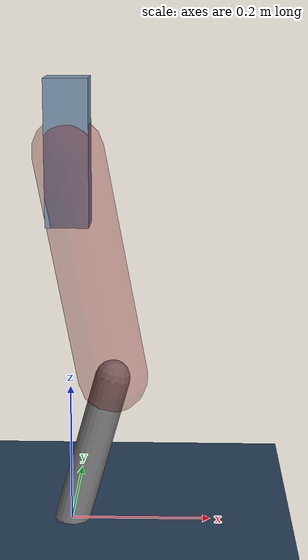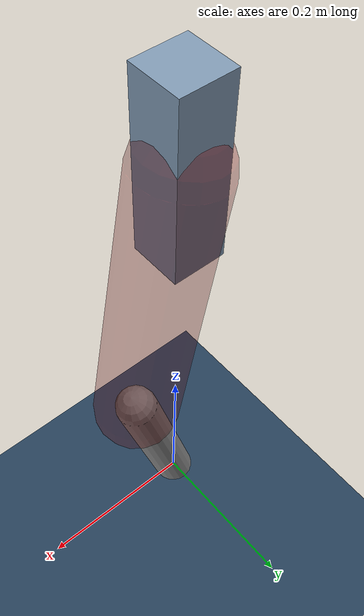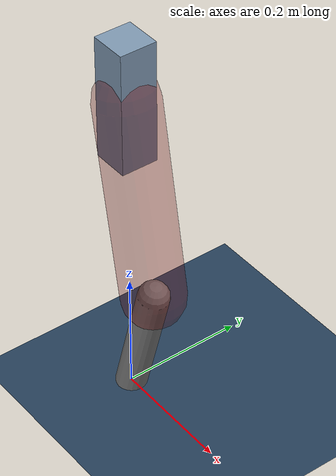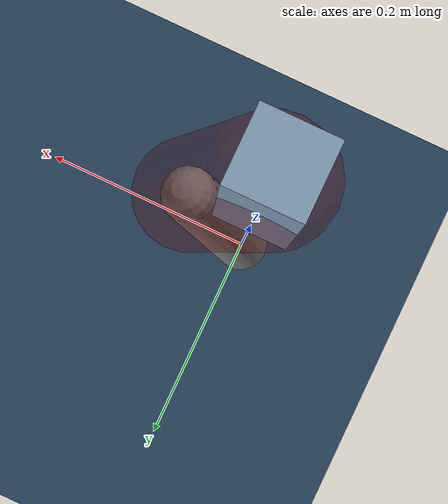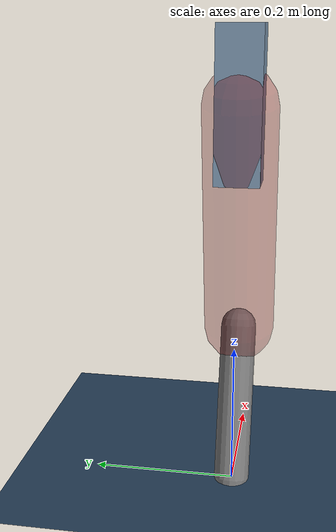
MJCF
<mujoco model="Hopper2D">
	<compiler inertiafromgeom="true" angle="radian" />
	<option timestep="0.001" integrator="implicit" cone="elliptic" solver="Newton" tolerance="1e-10" />

	<default>
		<geom contype="1" conaffinity="1" condim="3" friction="2 0.005 0.0001" solref="0.005 1" />
		<joint limited="true" damping="0.1" />
	</default>

	<asset>
		<texture name="skybox" type="skybox" builtin="gradient" rgb1=".4 .6 .8" rgb2="0 0 0" width="800" height="800" />
		<texture name="grid" type="2d" builtin="checker" rgb1=".1 .2 .3" rgb2=".2 .3 .4" width="300" height="300" mark="edge" markrgb=".2 .3 .4" />
		<material name="ground" texture="grid" texrepeat="1 1" texuniform="true" reflectance="0.1" />
		<material name="leg" rgba="0.5 0.6 0.7 1" />
	</asset>

	<worldbody>

		<geom name="floor" type="plane" size="5 5 0.25" material="ground" />

		<light directional="false" diffuse="0.8 0.8 0.8" specular="0.3 0.3 0.3" pos="0 0 2" dir="0 0 -1" />
		<light mode="targetbodycom" target="base" directional="false" diffuse="0.8 0.8 0.8" specular="0.3 0.3 0.3" pos="0 0 2" dir="0 0 -1" />

		<camera name="fixed" pos="0 -2 1" xyaxes="1 0 0 0 0 1" />
		<camera name="tracking" mode="trackcom" pos="0 -3 1" />

		<body name="root" pos="0 0 0.5334495405104854">
			<joint name="slide_x" type="slide" axis="1 0 0" range="-100 100" />
			<joint name="slide_z" type="slide" axis="0 0 1" range="0 10" />

			<body name="base" pos="0 0 0">
				<geom name="torso" type="box" size="0.03 0.03 0.1" mass="1.592" material="leg" />

				<body name="link1" pos="0 0 0" euler="0 1.3853213766943988 0">
					<joint type="hinge" axis="0 -1 0" pos="0 0 0" name="hinge1" limited="true" range="-3.14 3.14" stiffness="0" damping="0.1" />
					<geom name="thigh" type="capsule" fromto="0 0 0 0.3248456676690405 0 0" size="0.05" rgba="0.5 0 0 0.3" mass="1.0565833027064093" />

					<body name="link2" pos="0.3248456676690405 0 0" euler="0 0.4582098948317065 0">
						<joint type="hinge" axis="0 -1 0" pos="0 0 0" name="hinge2" limited="true" range="-3.14 3.14" stiffness="0" damping="0.1" />
						<geom name="shank" type="capsule" fromto="0 0 0 0.22239560569839104 0 0" size="0.025" mass="0.4196560451285519" />

					</body>
				</body>
			</body>
		</body>
	</worldbody>

	<actuator>
		<motor name="torque1" joint="hinge1" ctrlrange="-27.565153123934927 27.565153123934927" ctrllimited="true" gear="1" />
		<motor name="torque2" joint="hinge2" ctrlrange="-77.40193007447355 77.40193007447355" ctrllimited="true" gear="1" />
	</actuator>
</mujoco>
